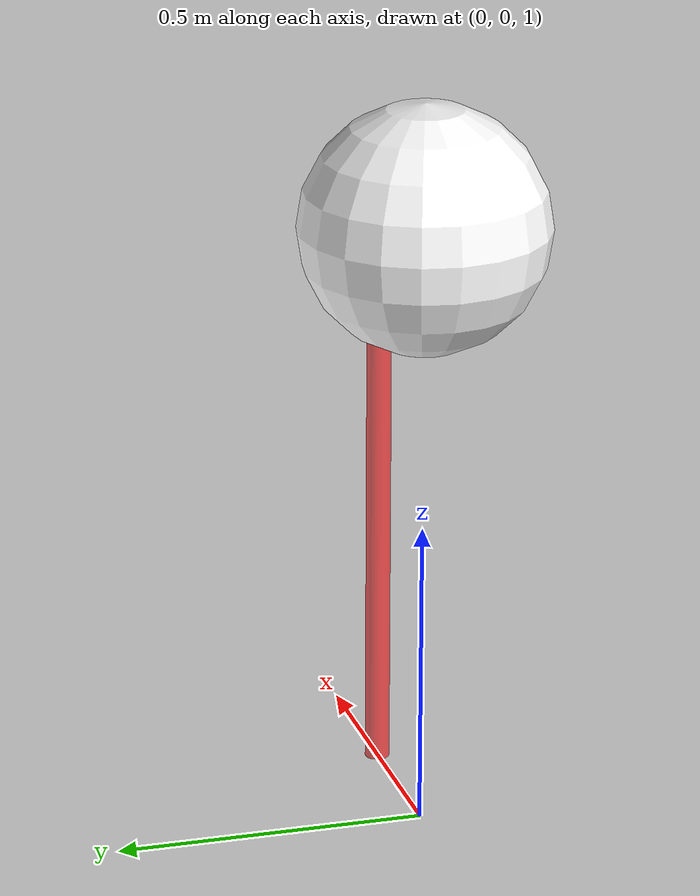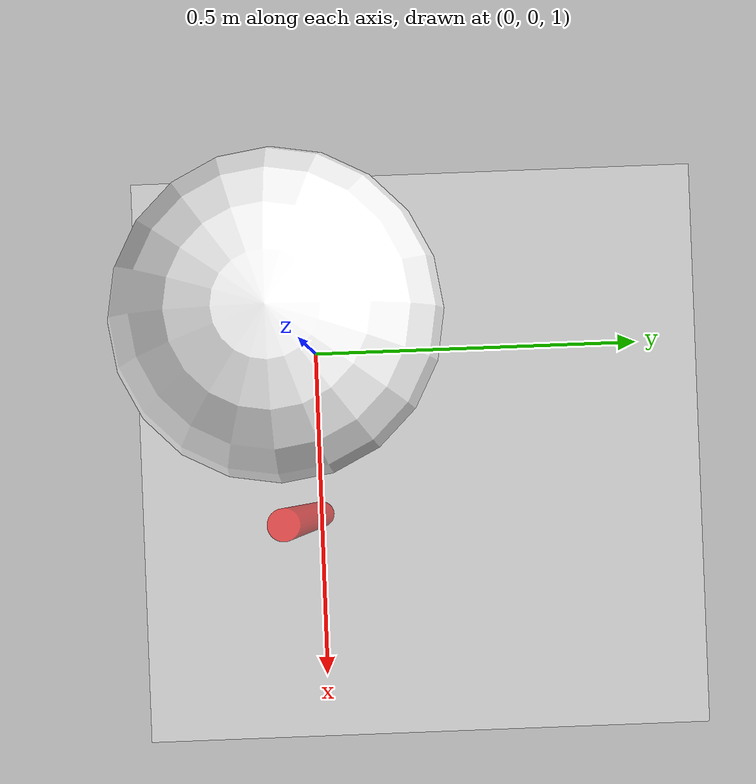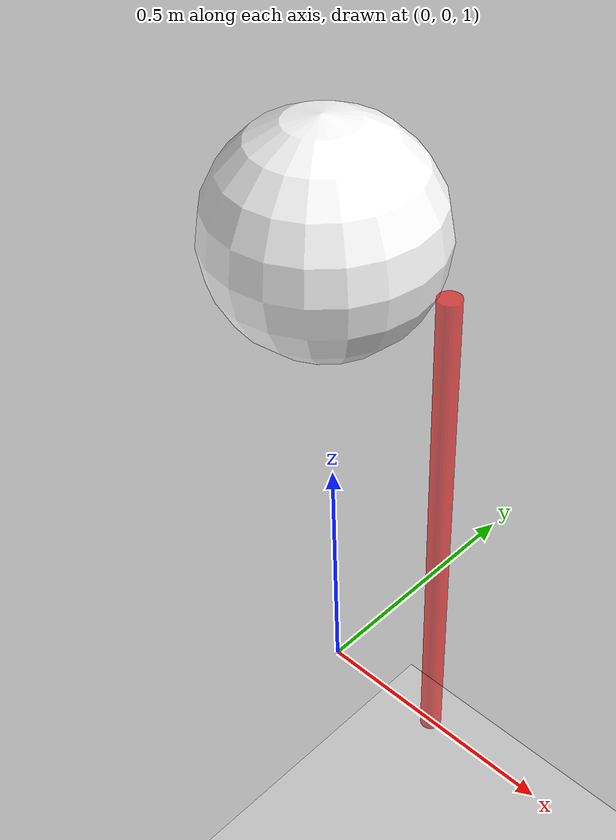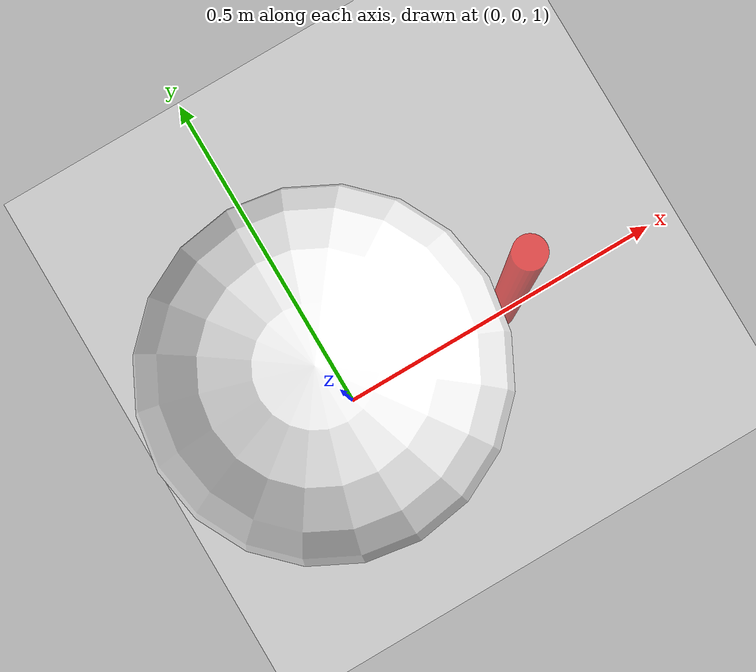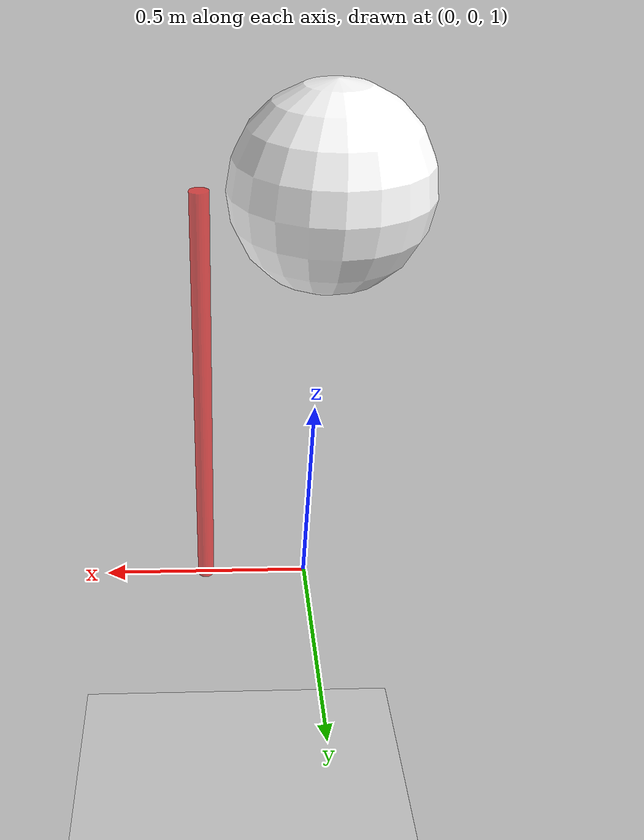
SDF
<sdf version="1.6">
  <world name="prox">
    <plugin
      filename="ignition-gazebo-physics-system"
      name="ignition::gazebo::systems::Physics">
    </plugin>
    <plugin
      filename="ignition-gazebo-user-commands-system"
      name="ignition::gazebo::systems::UserCommands">
    </plugin>
    <plugin
      filename="ignition-gazebo-scene-broadcaster-system"
      name="ignition::gazebo::systems::SceneBroadcaster">
    </plugin>
    <plugin
      filename="ignition-gazebo-sensors-system"
      name="ignition::gazebo::systems::Sensors">
    </plugin>

    <light type="directional" name="sun">
      <cast_shadows>true</cast_shadows>
      <pose>0 0 10 0 0 0</pose>
      <diffuse>0.8 0.8 0.8 1</diffuse>
      <specular>0.2 0.2 0.2 1</specular>
      <attenuation>
        <range>1000</range>
        <constant>0.9</constant>
        <linear>0.01</linear>
        <quadratic>0.001</quadratic>
      </attenuation>
      <direction>-0.5 0.1 -0.9</direction>
    </light>
    <model name="ground_plane">
      <static>true</static>
      <link name="link">
        <collision name="collision">
          <geometry>
            <plane>
              <normal>0 0 1</normal>
              <size>100 100</size>
            </plane>
          </geometry>
        </collision>
        <visual name="visual">
          <geometry>
            <plane>
              <normal>0 0 1</normal>
              <size>100 100</size>
            </plane>
          </geometry>
          <material>
            <ambient>0.8 0.8 0.8 1</ambient>
            <diffuse>0.8 0.8 0.8 1</diffuse>
            <specular>0.8 0.8 0.8 1</specular>
          </material>
        </visual>
      </link>
    </model>
    <model name="sensor_sphere">
      <pose>0 0 2  0 0 0</pose>
      <link name="base">
        <visual name="v1">
          <geometry>
            <sphere>
              <radius>0.2</radius>
            </sphere>
          </geometry>
          <material>
            <ambient>1.0 1.0 1.0 1</ambient>
            <diffuse>1.0 1.0 1.0 1</diffuse>
            <specular>1.0 1.0 1.0 1</specular>
          </material>
        </visual>
        <visual name="sensor_range">
          <pose>0.25 0 -0.5  0 0 0</pose>
          <geometry>
            <cylinder>
              <radius>0.02</radius>
              <length>1</length>
            </cylinder>
          </geometry>
          <material>
            <ambient>1.0 0.0 0.0 1</ambient>
            <diffuse>1.0 0.0 0.0 1</diffuse>
            <specular>1.0 0.0 0.0 1</specular>
          </material>
          <transparency>0.4</transparency>
        </visual>
        <collision name="c1">
          <geometry>
            <sphere>
              <radius>0.2</radius>
            </sphere>
          </geometry>
        </collision>
        <sensor name="prox_sensor" type="gpu_lidar">
          <pose>0.25 0 0 0 1.57 0</pose>
          <update_rate>30</update_rate>
          <visualize>true</visualize>

          <ray>
            <range>
              <min>0.01</min>
              <max>1.0</max>
              <resolution>0.001</resolution>
            </range>
            <scan>
              <horizontal>
                <samples>1</samples>
                <resolution>1</resolution>
                <min_angle>0</min_angle>
                <max_angle>0</max_angle>
              </horizontal>
            </scan>
            <noise>
              <type>gaussian</type>
              <mean>0.0</mean>
              <stddev>0.001</stddev>
            </noise>
          </ray>
          <plugin name="ProximityRayPlugin" filename="libProximityRayPlugin.so" >
            <output_state_topic>/ariac/congestion_sensor</output_state_topic>
          </plugin>
        </sensor>
      </link>
    </model>
  </world>
</sdf>
